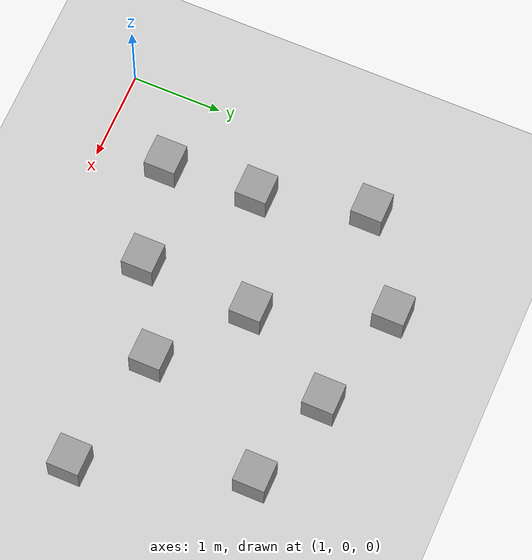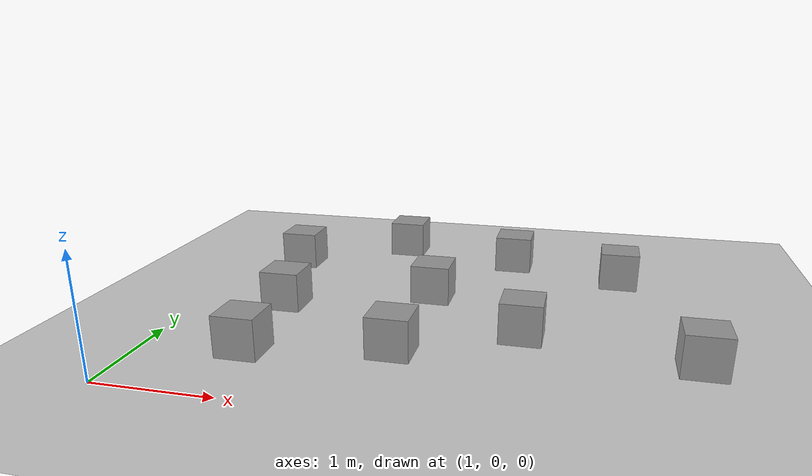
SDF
<sdf version="1.7">
 <world name="default">
  <light name="sun" type="directional">
   <pose>0 0 10 0 -0 0</pose>
   <diffuse>0.8 0.8 0.8 1</diffuse>
   <specular>0.2 0.2 0.2 1</specular>
   <attenuation>
    <range>1000</range>
    <constant>0.9</constant>
    <linear>0.01</linear>
    <quadratic>0.001</quadratic>
   </attenuation>
   <direction>-0.5 0.1 -0.9</direction>
   <spot><inner_angle>0</inner_angle><outer_angle>0</outer_angle><falloff>0</falloff></spot>
  </light>
  <model name="ground_plane">
   <static>1</static>
   <link name="link">
    <collision name="collision">
     <geometry><plane><normal>0 0 1</normal><size>100 100</size></plane></geometry>
     <surface>
      <contact><collide_bitmask>65535</collide_bitmask></contact>
      <friction><ode><mu>100</mu><mu2>50</mu2></ode></friction>
     </surface>
    </collision>
    <visual name="visual">
     <cast_shadows>0</cast_shadows>
     <geometry><plane><normal>0 0 1</normal><size>100 100</size></plane></geometry>
     <material>
      <script><uri>file://media/materials/scripts/gazebo.material</uri><name>Gazebo/Grey</name></script>
     </material>
    </visual>
   </link>
  </model>
  <gravity>0 0 -9.8</gravity>
  <magnetic_field>6e-06 2.3e-05 -4.2e-05</magnetic_field>
  <atmosphere type="adiabatic"/>
  <physics type="ode">
   <max_step_size>0.01</max_step_size>
   <real_time_factor>1</real_time_factor>
   <real_time_update_rate>100</real_time_update_rate>
  </physics>
  <scene><ambient>0.4 0.4 0.4 1</ambient><background>0.7 0.7 0.7 1</background><shadows>1</shadows></scene>
  <spherical_coordinates>
   <surface_model>EARTH_WGS84</surface_model>
   <latitude_deg>0</latitude_deg>
   <longitude_deg>0</longitude_deg>
   <elevation>0</elevation>
   <heading_deg>0</heading_deg>
  </spherical_coordinates>
  <model name="block35">
   <link name="link">
    <inertial>
     <mass>5.30426</mass>
     <inertia><ixx>4.09501</ixx><ixy>0</ixy><ixz>0</ixz><iyy>1.73225</iyy><iyz>0</iyz><izz>4.50976</izz></inertia>
    </inertial>
    <visual name="visual">
     <geometry><box><size>0.35 0.35 0.35</size></box></geometry>
     <material>
      <script><name>Gazebo/Grey</name><uri>file://media/materials/scripts/gazebo.material</uri></script>
      <shader type="pixel"/>
     </material>
    </visual>
    <collision name="collision">
     <geometry><box><size>0.35 0.35 0.35</size></box></geometry>
     <surface>
      <friction>
       <ode><mu>1</mu><mu2>1</mu2><fdir1>0 0 0</fdir1><slip1>0</slip1><slip2>0</slip2></ode>
       <torsional>
        <coefficient>1</coefficient>
        <patch_radius>0</patch_radius>
        <surface_radius>0</surface_radius>
        <use_patch_radius>1</use_patch_radius>
        <ode><slip>0</slip></ode>
       </torsional>
      </friction>
      <bounce><restitution_coefficient>0</restitution_coefficient><threshold>1e+06</threshold></bounce>
      <contact>
       <collide_without_contact>0</collide_without_contact>
       <collide_without_contact_bitmask>1</collide_without_contact_bitmask>
       <collide_bitmask>1</collide_bitmask>
       <ode>
        <soft_cfm>0</soft_cfm>
        <soft_erp>0.2</soft_erp>
        <kp>1e+13</kp>
        <kd>1</kd>
        <max_vel>0.01</max_vel>
        <min_depth>0</min_depth>
       </ode>
       <bullet>
        <split_impulse>1</split_impulse>
        <split_impulse_penetration_threshold>-0.01</split_impulse_penetration_threshold>
        <soft_cfm>0</soft_cfm>
        <soft_erp>0.2</soft_erp>
        <kp>1e+13</kp>
        <kd>1</kd>
       </bullet>
      </contact>
     </surface>
    </collision>
   </link>
   <static>0</static>
   <pose>1.79404 1.77377 0.175 0 -0 -0.001534</pose>
  </model>
  <model name="block35_0">
   <link name="link">
    <inertial>
     <mass>5.30426</mass>
     <inertia><ixx>4.09501</ixx><ixy>0</ixy><ixz>0</ixz><iyy>1.73225</iyy><iyz>0</iyz><izz>4.50976</izz></inertia>
    </inertial>
    <visual name="visual">
     <geometry><box><size>0.35 0.35 0.35</size></box></geometry>
     <material>
      <script><name>Gazebo/Grey</name><uri>file://media/materials/scripts/gazebo.material</uri></script>
      <shader type="pixel"/>
     </material>
    </visual>
    <collision name="collision">
     <geometry><box><size>0.35 0.35 0.35</size></box></geometry>
     <surface>
      <friction>
       <ode><mu>1</mu><mu2>1</mu2><fdir1>0 0 0</fdir1><slip1>0</slip1><slip2>0</slip2></ode>
       <torsional>
        <coefficient>1</coefficient>
        <patch_radius>0</patch_radius>
        <surface_radius>0</surface_radius>
        <use_patch_radius>1</use_patch_radius>
        <ode><slip>0</slip></ode>
       </torsional>
      </friction>
      <bounce><restitution_coefficient>0</restitution_coefficient><threshold>1e+06</threshold></bounce>
      <contact>
       <collide_without_contact>0</collide_without_contact>
       <collide_without_contact_bitmask>1</collide_without_contact_bitmask>
       <collide_bitmask>1</collide_bitmask>
       <ode>
        <soft_cfm>0</soft_cfm>
        <soft_erp>0.2</soft_erp>
        <kp>1e+13</kp>
        <kd>1</kd>
        <max_vel>0.01</max_vel>
        <min_depth>0</min_depth>
       </ode>
       <bullet>
        <split_impulse>1</split_impulse>
        <split_impulse_penetration_threshold>-0.01</split_impulse_penetration_threshold>
        <soft_cfm>0</soft_cfm>
        <soft_erp>0.2</soft_erp>
        <kp>1e+13</kp>
        <kd>1</kd>
       </bullet>
      </contact>
     </surface>
    </collision>
   </link>
   <static>0</static>
   <pose>2.50144 3.6208 0.175 0 -0 0.001533</pose>
  </model>
  <model name="block35_1">
   <link name="link">
    <inertial>
     <mass>5.30426</mass>
     <inertia><ixx>4.09501</ixx><ixy>0</ixy><ixz>0</ixz><iyy>1.73225</iyy><iyz>0</iyz><izz>4.50976</izz></inertia>
    </inertial>
    <visual name="visual">
     <geometry><box><size>0.35 0.35 0.35</size></box></geometry>
     <material>
      <script><name>Gazebo/Grey</name><uri>file://media/materials/scripts/gazebo.material</uri></script>
      <shader type="pixel"/>
     </material>
    </visual>
    <collision name="collision">
     <geometry><box><size>0.35 0.35 0.35</size></box></geometry>
     <surface>
      <friction>
       <ode><mu>1</mu><mu2>1</mu2><fdir1>0 0 0</fdir1><slip1>0</slip1><slip2>0</slip2></ode>
       <torsional>
        <coefficient>1</coefficient>
        <patch_radius>0</patch_radius>
        <surface_radius>0</surface_radius>
        <use_patch_radius>1</use_patch_radius>
        <ode><slip>0</slip></ode>
       </torsional>
      </friction>
      <bounce><restitution_coefficient>0</restitution_coefficient><threshold>1e+06</threshold></bounce>
      <contact>
       <collide_without_contact>0</collide_without_contact>
       <collide_without_contact_bitmask>1</collide_without_contact_bitmask>
       <collide_bitmask>1</collide_bitmask>
       <ode>
        <soft_cfm>0</soft_cfm>
        <soft_erp>0.2</soft_erp>
        <kp>1e+13</kp>
        <kd>1</kd>
        <max_vel>0.01</max_vel>
        <min_depth>0</min_depth>
       </ode>
       <bullet>
        <split_impulse>1</split_impulse>
        <split_impulse_penetration_threshold>-0.01</split_impulse_penetration_threshold>
        <soft_cfm>0</soft_cfm>
        <soft_erp>0.2</soft_erp>
        <kp>1e+13</kp>
        <kd>1</kd>
       </bullet>
      </contact>
     </surface>
    </collision>
   </link>
   <static>0</static>
   <pose>3.05216 2.24845 0.174165 -7.1e-05 -0.000188 -0.000766</pose>
  </model>
  <model name="block35_2">
   <link name="link">
    <inertial>
     <mass>5.30426</mass>
     <inertia><ixx>4.09501</ixx><ixy>0</ixy><ixz>0</ixz><iyy>1.73225</iyy><iyz>0</iyz><izz>4.50976</izz></inertia>
    </inertial>
    <visual name="visual">
     <geometry><box><size>0.35 0.35 0.35</size></box></geometry>
     <material>
      <script><name>Gazebo/Grey</name><uri>file://media/materials/scripts/gazebo.material</uri></script>
      <shader type="pixel"/>
     </material>
    </visual>
    <collision name="collision">
     <geometry><box><size>0.35 0.35 0.35</size></box></geometry>
     <surface>
      <friction>
       <ode><mu>1</mu><mu2>1</mu2><fdir1>0 0 0</fdir1><slip1>0</slip1><slip2>0</slip2></ode>
       <torsional>
        <coefficient>1</coefficient>
        <patch_radius>0</patch_radius>
        <surface_radius>0</surface_radius>
        <use_patch_radius>1</use_patch_radius>
        <ode><slip>0</slip></ode>
       </torsional>
      </friction>
      <bounce><restitution_coefficient>0</restitution_coefficient><threshold>1e+06</threshold></bounce>
      <contact>
       <collide_without_contact>0</collide_without_contact>
       <collide_without_contact_bitmask>1</collide_without_contact_bitmask>
       <collide_bitmask>1</collide_bitmask>
       <ode>
        <soft_cfm>0</soft_cfm>
        <soft_erp>0.2</soft_erp>
        <kp>1e+13</kp>
        <kd>1</kd>
        <max_vel>0.01</max_vel>
        <min_depth>0</min_depth>
       </ode>
       <bullet>
        <split_impulse>1</split_impulse>
        <split_impulse_penetration_threshold>-0.01</split_impulse_penetration_threshold>
        <soft_cfm>0</soft_cfm>
        <soft_erp>0.2</soft_erp>
        <kp>1e+13</kp>
        <kd>1</kd>
       </bullet>
      </contact>
     </surface>
    </collision>
   </link>
   <static>0</static>
   <pose>4.72691 3.01639 0.175 0 -0 -0.001475</pose>
  </model>
  <model name="block35_3">
   <link name="link">
    <inertial>
     <mass>5.30426</mass>
     <inertia><ixx>4.09501</ixx><ixy>0</ixy><ixz>0</ixz><iyy>1.73225</iyy><iyz>0</iyz><izz>4.50976</izz></inertia>
    </inertial>
    <visual name="visual">
     <geometry><box><size>0.35 0.35 0.35</size></box></geometry>
     <material>
      <script><name>Gazebo/Grey</name><uri>file://media/materials/scripts/gazebo.material</uri></script>
      <shader type="pixel"/>
     </material>
    </visual>
    <collision name="collision">
     <geometry><box><size>0.35 0.35 0.35</size></box></geometry>
     <surface>
      <friction>
       <ode><mu>1</mu><mu2>1</mu2><fdir1>0 0 0</fdir1><slip1>0</slip1><slip2>0</slip2></ode>
       <torsional>
        <coefficient>1</coefficient>
        <patch_radius>0</patch_radius>
        <surface_radius>0</surface_radius>
        <use_patch_radius>1</use_patch_radius>
        <ode><slip>0</slip></ode>
       </torsional>
      </friction>
      <bounce><restitution_coefficient>0</restitution_coefficient><threshold>1e+06</threshold></bounce>
      <contact>
       <collide_without_contact>0</collide_without_contact>
       <collide_without_contact_bitmask>1</collide_without_contact_bitmask>
       <collide_bitmask>1</collide_bitmask>
       <ode>
        <soft_cfm>0</soft_cfm>
        <soft_erp>0.2</soft_erp>
        <kp>1e+13</kp>
        <kd>1</kd>
        <max_vel>0.01</max_vel>
        <min_depth>0</min_depth>
       </ode>
       <bullet>
        <split_impulse>1</split_impulse>
        <split_impulse_penetration_threshold>-0.01</split_impulse_penetration_threshold>
        <soft_cfm>0</soft_cfm>
        <soft_erp>0.2</soft_erp>
        <kp>1e+13</kp>
        <kd>1</kd>
       </bullet>
      </contact>
     </surface>
    </collision>
   </link>
   <static>0</static>
   <pose>2.99247 1.00135 0.174165 7.1e-05 -0.000188 -0.00029</pose>
  </model>
  <model name="block35_4">
   <link name="link">
    <inertial>
     <mass>5.30426</mass>
     <inertia><ixx>4.09501</ixx><ixy>0</ixy><ixz>0</ixz><iyy>1.73225</iyy><iyz>0</iyz><izz>4.50976</izz></inertia>
    </inertial>
    <visual name="visual">
     <geometry><box><size>0.35 0.35 0.35</size></box></geometry>
     <material>
      <script><name>Gazebo/Grey</name><uri>file://media/materials/scripts/gazebo.material</uri></script>
      <shader type="pixel"/>
     </material>
    </visual>
    <collision name="collision">
     <geometry><box><size>0.35 0.35 0.35</size></box></geometry>
     <surface>
      <friction>
       <ode><mu>1</mu><mu2>1</mu2><fdir1>0 0 0</fdir1><slip1>0</slip1><slip2>0</slip2></ode>
       <torsional>
        <coefficient>1</coefficient>
        <patch_radius>0</patch_radius>
        <surface_radius>0</surface_radius>
        <use_patch_radius>1</use_patch_radius>
        <ode><slip>0</slip></ode>
       </torsional>
      </friction>
      <bounce><restitution_coefficient>0</restitution_coefficient><threshold>1e+06</threshold></bounce>
      <contact>
       <collide_without_contact>0</collide_without_contact>
       <collide_without_contact_bitmask>1</collide_without_contact_bitmask>
       <collide_bitmask>1</collide_bitmask>
       <ode>
        <soft_cfm>0</soft_cfm>
        <soft_erp>0.2</soft_erp>
        <kp>1e+13</kp>
        <kd>1</kd>
        <max_vel>0.01</max_vel>
        <min_depth>0</min_depth>
       </ode>
       <bullet>
        <split_impulse>1</split_impulse>
        <split_impulse_penetration_threshold>-0.01</split_impulse_penetration_threshold>
        <soft_cfm>0</soft_cfm>
        <soft_erp>0.2</soft_erp>
        <kp>1e+13</kp>
        <kd>1</kd>
       </bullet>
      </contact>
     </surface>
    </collision>
   </link>
   <static>0</static>
   <pose>1.50856 2.97357 0.175 0 -0 -0.001401</pose>
  </model>
  <model name="block35_5">
   <link name="link">
    <inertial>
     <mass>5.30426</mass>
     <inertia><ixx>4.09501</ixx><ixy>0</ixy><ixz>0</ixz><iyy>1.73225</iyy><iyz>0</iyz><izz>4.50976</izz></inertia>
    </inertial>
    <visual name="visual">
     <geometry><box><size>0.35 0.35 0.35</size></box></geometry>
     <material>
      <script><name>Gazebo/Grey</name><uri>file://media/materials/scripts/gazebo.material</uri></script>
      <shader type="pixel"/>
     </material>
    </visual>
    <collision name="collision">
     <geometry><box><size>0.35 0.35 0.35</size></box></geometry>
     <surface>
      <friction>
       <ode><mu>1</mu><mu2>1</mu2><fdir1>0 0 0</fdir1><slip1>0</slip1><slip2>0</slip2></ode>
       <torsional>
        <coefficient>1</coefficient>
        <patch_radius>0</patch_radius>
        <surface_radius>0</surface_radius>
        <use_patch_radius>1</use_patch_radius>
        <ode><slip>0</slip></ode>
       </torsional>
      </friction>
      <bounce><restitution_coefficient>0</restitution_coefficient><threshold>1e+06</threshold></bounce>
      <contact>
       <collide_without_contact>0</collide_without_contact>
       <collide_without_contact_bitmask>1</collide_without_contact_bitmask>
       <collide_bitmask>1</collide_bitmask>
       <ode>
        <soft_cfm>0</soft_cfm>
        <soft_erp>0.2</soft_erp>
        <kp>1e+13</kp>
        <kd>1</kd>
        <max_vel>0.01</max_vel>
        <min_depth>0</min_depth>
       </ode>
       <bullet>
        <split_impulse>1</split_impulse>
        <split_impulse_penetration_threshold>-0.01</split_impulse_penetration_threshold>
        <soft_cfm>0</soft_cfm>
        <soft_erp>0.2</soft_erp>
        <kp>1e+13</kp>
        <kd>1</kd>
       </bullet>
      </contact>
     </surface>
    </collision>
   </link>
   <static>0</static>
   <pose>3.68508 3.33207 0.174165 -7.1e-05 -0.000188 -0.000618</pose>
  </model>
  <model name="block35_6">
   <link name="link">
    <inertial>
     <mass>5.30426</mass>
     <inertia><ixx>4.09501</ixx><ixy>0</ixy><ixz>0</ixz><iyy>1.73225</iyy><iyz>0</iyz><izz>4.50976</izz></inertia>
    </inertial>
    <visual name="visual">
     <geometry><box><size>0.35 0.35 0.35</size></box></geometry>
     <material>
      <script><name>Gazebo/Grey</name><uri>file://media/materials/scripts/gazebo.material</uri></script>
      <shader type="pixel"/>
     </material>
    </visual>
    <collision name="collision">
     <geometry><box><size>0.35 0.35 0.35</size></box></geometry>
     <surface>
      <friction>
       <ode><mu>1</mu><mu2>1</mu2><fdir1>0 0 0</fdir1><slip1>0</slip1><slip2>0</slip2></ode>
       <torsional>
        <coefficient>1</coefficient>
        <patch_radius>0</patch_radius>
        <surface_radius>0</surface_radius>
        <use_patch_radius>1</use_patch_radius>
        <ode><slip>0</slip></ode>
       </torsional>
      </friction>
      <bounce><restitution_coefficient>0</restitution_coefficient><threshold>1e+06</threshold></bounce>
      <contact>
       <collide_without_contact>0</collide_without_contact>
       <collide_without_contact_bitmask>1</collide_without_contact_bitmask>
       <collide_bitmask>1</collide_bitmask>
       <ode>
        <soft_cfm>0</soft_cfm>
        <soft_erp>0.2</soft_erp>
        <kp>1e+13</kp>
        <kd>1</kd>
        <max_vel>0.01</max_vel>
        <min_depth>0</min_depth>
       </ode>
       <bullet>
        <split_impulse>1</split_impulse>
        <split_impulse_penetration_threshold>-0.01</split_impulse_penetration_threshold>
        <soft_cfm>0</soft_cfm>
        <soft_erp>0.2</soft_erp>
        <kp>1e+13</kp>
        <kd>1</kd>
       </bullet>
      </contact>
     </surface>
    </collision>
   </link>
   <static>0</static>
   <pose>3.94697 1.5168 0.175 0 0 -0.001087</pose>
  </model>
  <model name="block35_7">
   <link name="link">
    <inertial>
     <mass>5.30426</mass>
     <inertia><ixx>4.09501</ixx><ixy>0</ixy><ixz>0</ixz><iyy>1.73225</iyy><iyz>0</iyz><izz>4.50976</izz></inertia>
    </inertial>
    <visual name="visual">
     <geometry><box><size>0.35 0.35 0.35</size></box></geometry>
     <material>
      <script><name>Gazebo/Grey</name><uri>file://media/materials/scripts/gazebo.material</uri></script>
      <shader type="pixel"/>
     </material>
    </visual>
    <collision name="collision">
     <geometry><box><size>0.35 0.35 0.35</size></box></geometry>
     <surface>
      <friction>
       <ode><mu>1</mu><mu2>1</mu2><fdir1>0 0 0</fdir1><slip1>0</slip1><slip2>0</slip2></ode>
       <torsional>
        <coefficient>1</coefficient>
        <patch_radius>0</patch_radius>
        <surface_radius>0</surface_radius>
        <use_patch_radius>1</use_patch_radius>
        <ode><slip>0</slip></ode>
       </torsional>
      </friction>
      <bounce><restitution_coefficient>0</restitution_coefficient><threshold>1e+06</threshold></bounce>
      <contact>
       <collide_without_contact>0</collide_without_contact>
       <collide_without_contact_bitmask>1</collide_without_contact_bitmask>
       <collide_bitmask>1</collide_bitmask>
       <ode>
        <soft_cfm>0</soft_cfm>
        <soft_erp>0.2</soft_erp>
        <kp>1e+13</kp>
        <kd>1</kd>
        <max_vel>0.01</max_vel>
        <min_depth>0</min_depth>
       </ode>
       <bullet>
        <split_impulse>1</split_impulse>
        <split_impulse_penetration_threshold>-0.01</split_impulse_penetration_threshold>
        <soft_cfm>0</soft_cfm>
        <soft_erp>0.2</soft_erp>
        <kp>1e+13</kp>
        <kd>1</kd>
       </bullet>
      </contact>
     </surface>
    </collision>
   </link>
   <static>0</static>
   <pose>1.85783 0.751568 0.175 0 -0 0.000696</pose>
  </model>
  <model name="block35_8">
   <link name="link">
    <inertial>
     <mass>5.30426</mass>
     <inertia><ixx>4.09501</ixx><ixy>0</ixy><ixz>0</ixz><iyy>1.73225</iyy><iyz>0</iyz><izz>4.50976</izz></inertia>
    </inertial>
    <visual name="visual">
     <geometry><box><size>0.35 0.35 0.35</size></box></geometry>
     <material>
      <script><name>Gazebo/Grey</name><uri>file://media/materials/scripts/gazebo.material</uri></script>
      <shader type="pixel"/>
     </material>
    </visual>
    <collision name="collision">
     <geometry><box><size>0.35 0.35 0.35</size></box></geometry>
     <surface>
      <friction>
       <ode><mu>1</mu><mu2>1</mu2><fdir1>0 0 0</fdir1><slip1>0</slip1><slip2>0</slip2></ode>
       <torsional>
        <coefficient>1</coefficient>
        <patch_radius>0</patch_radius>
        <surface_radius>0</surface_radius>
        <use_patch_radius>1</use_patch_radius>
        <ode><slip>0</slip></ode>
       </torsional>
      </friction>
      <bounce><restitution_coefficient>0</restitution_coefficient><threshold>1e+06</threshold></bounce>
      <contact>
       <collide_without_contact>0</collide_without_contact>
       <collide_without_contact_bitmask>1</collide_without_contact_bitmask>
       <collide_bitmask>1</collide_bitmask>
       <ode>
        <soft_cfm>0</soft_cfm>
        <soft_erp>0.2</soft_erp>
        <kp>1e+13</kp>
        <kd>1</kd>
        <max_vel>0.01</max_vel>
        <min_depth>0</min_depth>
       </ode>
       <bullet>
        <split_impulse>1</split_impulse>
        <split_impulse_penetration_threshold>-0.01</split_impulse_penetration_threshold>
        <soft_cfm>0</soft_cfm>
        <soft_erp>0.2</soft_erp>
        <kp>1e+13</kp>
        <kd>1</kd>
       </bullet>
      </contact>
     </surface>
    </collision>
   </link>
   <static>0</static>
   <pose>5.30946 1.2279 0.174916 0.00017 -0.00031 3.4e-05</pose>
  </model>
 </world>
</sdf>
